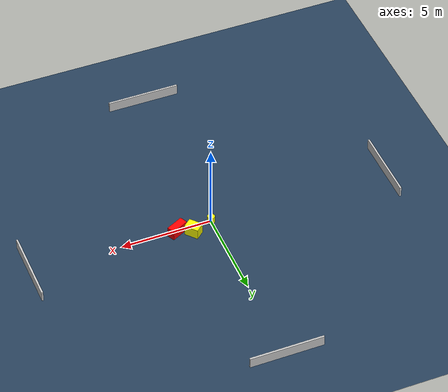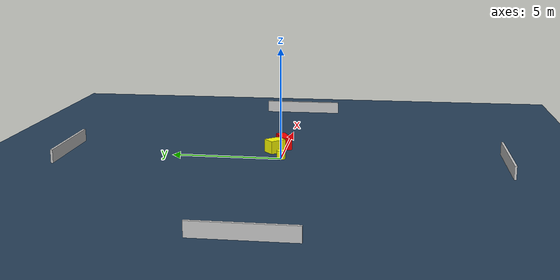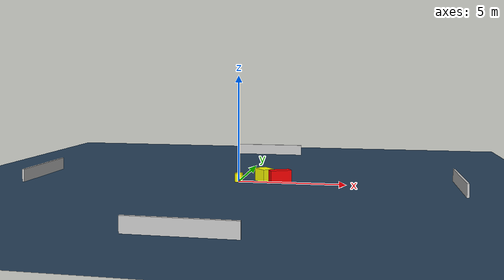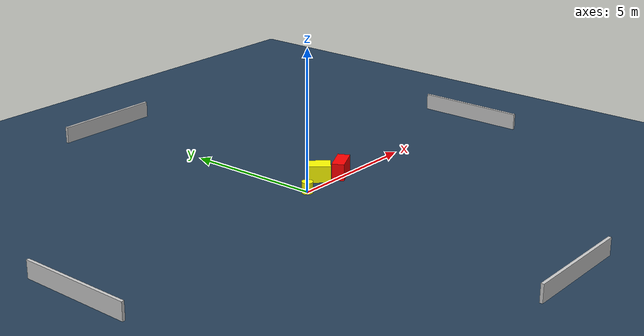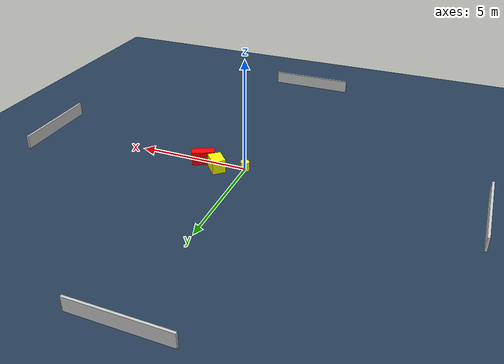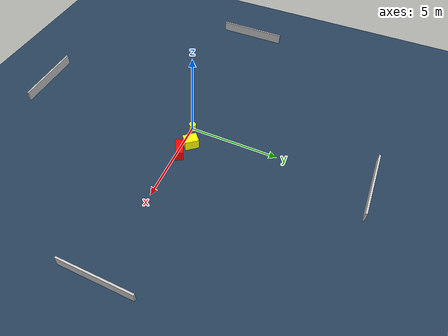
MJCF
<?xml version="1.0" ?>
<mujoco model="generated_environment">
  <option timestep="0.01" integrator="RK4" cone="elliptic"/>
  <default>
    <geom density="1"/>
  </default>
  <asset>
    <texture builtin="gradient" height="3072" name="skybox" rgb1="0.3 0.5 0.7" rgb2="0 0 0" type="skybox" width="512"/>
    <texture builtin="checker" height="300" name="groundplane" rgb1="0.2 0.3 0.4" rgb2="0.1 0.2 0.3" type="2d" width="300"/>
    <material name="groundplane" reflectance="0.2" texrepeat="5 5" texture="groundplane"/>
  </asset>
  <worldbody>
    <light dir="0 0 -1" directional="true" pos="0 0 1.5"/>
    <geom condim="3" friction="0.5 0.005 0.001" material="groundplane" name="floor" pos="0 0 0" size="0 0 0.05" type="plane"/>
    <body name="walls">
      <geom name="wall_1" condim="4" pos="-10.0 0.0 0.3" rgba="0.800000011920929 0.800000011920929 0.800000011920929 1.0" size="0.05 2.0 0.3" type="box"/>
      <geom name="wall_2" condim="4" pos="10.0 0.0 0.3" rgba="0.800000011920929 0.800000011920929 0.800000011920929 1.0" size="0.05 2.0 0.3" type="box"/>
      <geom name="wall_3" condim="4" pos="0.0 -10.0 0.3" rgba="0.800000011920929 0.800000011920929 0.800000011920929 1.0" size="2.0 0.05 0.3" type="box"/>
      <geom name="wall_4" condim="4" pos="0.0 10.0 0.3" rgba="0.800000011920929 0.800000011920929 0.800000011920929 1.0" size="2.0 0.05 0.3" type="box"/>
    </body>
    <body name="robot">
      <joint name="joint_x" type="slide" pos="0 0 0" axis="1 0 0"/>
      <joint name="joint_y" type="slide" pos="0 0 0" axis="0 1 0"/>
      <geom name="robot" type="cylinder" pos="0.0 0.0 0.2" size="0.2 0.2 0.0" mass="5.0" friction="1.0 0.005 0.0001" condim="4" rgba="1.0 1.0 0.0 1.0"/>
    </body>
    <body name="obstacle_1_movable">
      <geom name="obstacle_1_movable" condim="4" pos="1.1560719523370033 0.42889878377678853 0.3" euler="0 0 130.8811719049305" friction="0.0 0.005 0.001" rgba="1.0 1.0 0.0 1.0" size="0.38760030433883697 0.2951494576367978 0.3" type="box" mass="0.1"/>
      <joint type="free"/>
    </body>
    <body name="obstacle_2_static">
      <geom name="obstacle_2_static" condim="4" pos="1.9421937971632945 0.10690433816782408 0.3" euler="0 0 206.16190042211596" friction="0.0 0.005 0.001" rgba="1.0 0.0 0.0 1.0" size="0.5032966975593951 0.21893832074168146 0.3" type="box"/>
    </body>
  </worldbody>
  <actuator>
    <motor name="actuator_x" joint="joint_x" gear="1" ctrlrange="-1 1"/>
    <motor name="actuator_y" joint="joint_y" gear="1" ctrlrange="-1 1"/>
  </actuator>
</mujoco>
